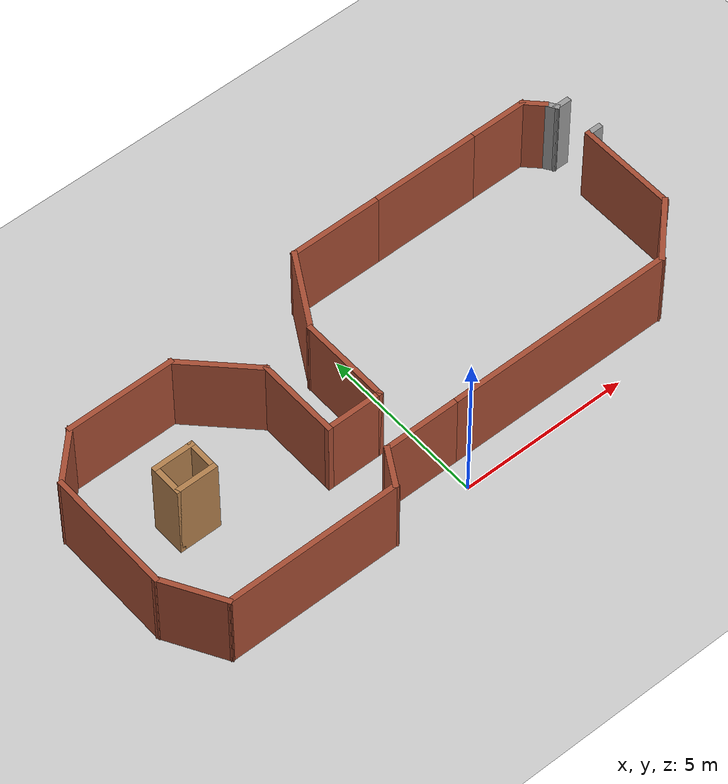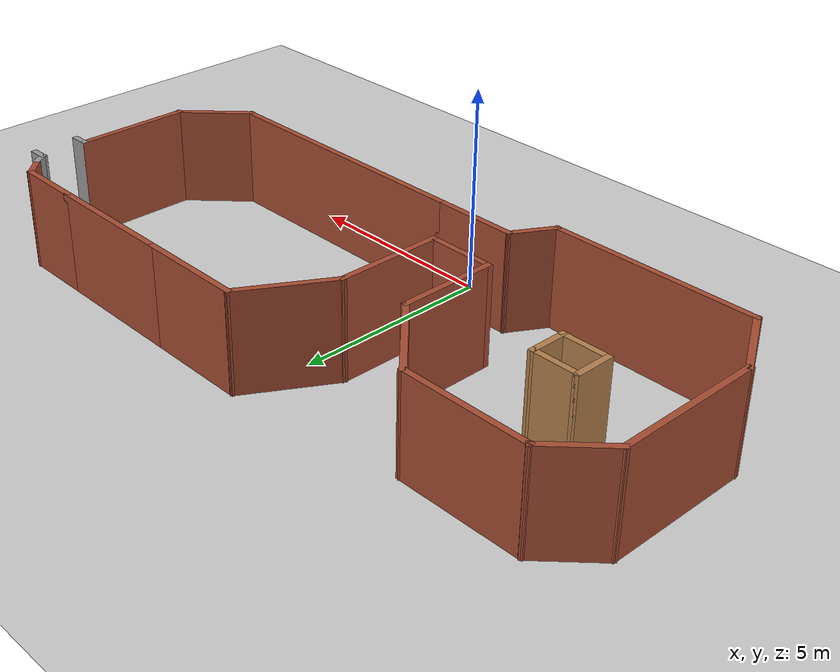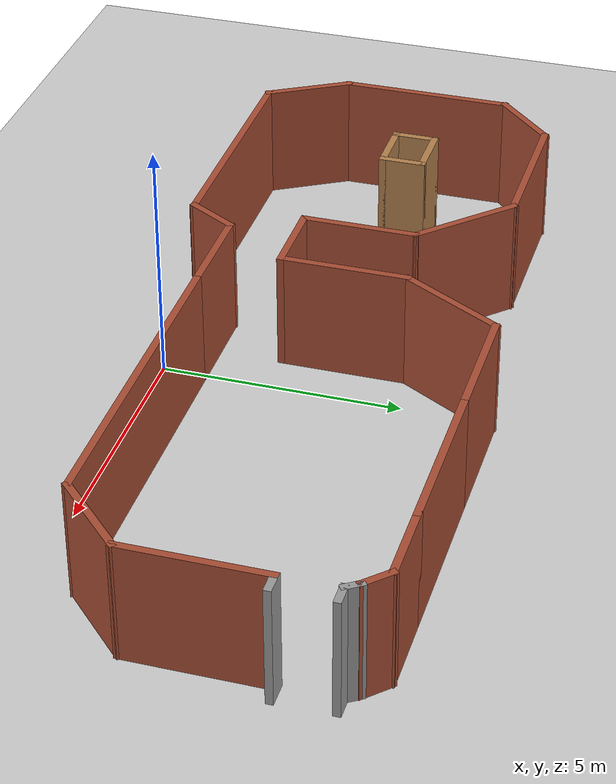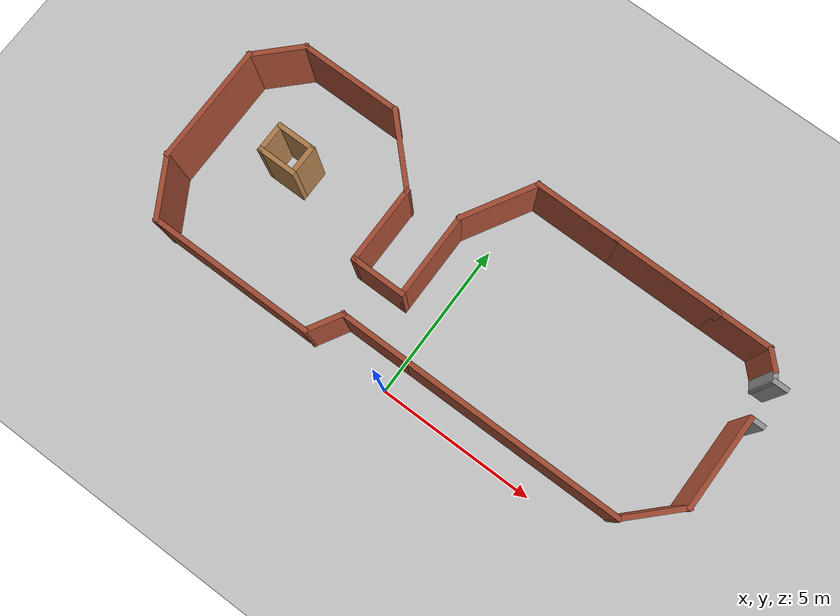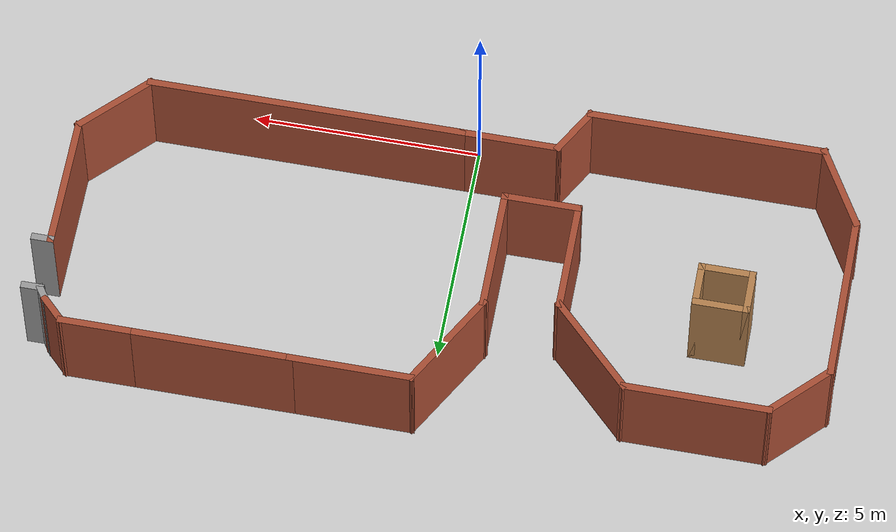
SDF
<sdf version="1.7">
 <world name="default">
  <light name="sun" type="directional">
   <pose>0 0 10 0 -0 0</pose>
   <diffuse>0.8 0.8 0.8 1</diffuse>
   <specular>0.2 0.2 0.2 1</specular>
   <attenuation>
    <range>1000</range>
    <constant>0.9</constant>
    <linear>0.01</linear>
    <quadratic>0.001</quadratic>
   </attenuation>
   <direction>-0.5 0.1 -0.9</direction>
   <spot><inner_angle>0</inner_angle><outer_angle>0</outer_angle><falloff>0</falloff></spot>
  </light>
  <model name="ground_plane">
   <static>1</static>
   <link name="link">
    <collision name="collision">
     <geometry><plane><normal>0 0 1</normal><size>100 100</size></plane></geometry>
     <surface><friction><ode><mu>100</mu><mu2>50</mu2></ode></friction></surface>
    </collision>
    <visual name="visual">
     <cast_shadows>0</cast_shadows>
     <geometry><plane><normal>0 0 1</normal><size>100 100</size></plane></geometry>
     <material>
      <script><uri>file://media/materials/scripts/gazebo.material</uri><name>Gazebo/Grey</name></script>
     </material>
    </visual>
   </link>
  </model>
  <gravity>0 0 -9.8</gravity>
  <magnetic_field>6e-06 2.3e-05 -4.2e-05</magnetic_field>
  <atmosphere type="adiabatic"/>
  <physics type="ode">
   <max_step_size>0.001</max_step_size>
   <real_time_factor>1</real_time_factor>
   <real_time_update_rate>1000</real_time_update_rate>
  </physics>
  <scene><ambient>0.4 0.4 0.4 1</ambient><background>0.7 0.7 0.7 1</background><shadows>1</shadows></scene>
  <audio><device>default</device></audio>
  <spherical_coordinates>
   <surface_model>EARTH_WGS84</surface_model>
   <latitude_deg>0</latitude_deg>
   <longitude_deg>0</longitude_deg>
   <elevation>0</elevation>
   <heading_deg>0</heading_deg>
  </spherical_coordinates>
  <model name="world-modul">
   <pose>0.13036 3.82608 0 0 -0 0</pose>
   <link name="Wall_0">
    <collision name="Wall_0_Collision">
     <geometry><box><size>2.75 0.15 2.5</size></box></geometry>
     <pose>0 0 1.25 0 -0 0</pose>
    </collision>
    <visual name="Wall_0_Visual">
     <pose>0 0 1.25 0 -0 0</pose>
     <geometry><box><size>2.75 0.15 2.5</size></box></geometry>
     <material>
      <script><uri>file://media/materials/scripts/gazebo.material</uri><name>Gazebo/Bricks</name></script>
      <ambient>1 1 1 1</ambient>
     </material>
     <meta><layer>0</layer></meta>
    </visual>
    <pose>1.39203 3.04502 0 0 -0 3.14159</pose>
   </link>
   <link name="Wall_1">
    <collision name="Wall_1_Collision">
     <geometry><box><size>2.5 0.15 2.5</size></box></geometry>
     <pose>0 0 1.25 0 -0 0</pose>
    </collision>
    <visual name="Wall_1_Visual">
     <pose>0 0 1.25 0 -0 0</pose>
     <geometry><box><size>2.5 0.15 2.5</size></box></geometry>
     <material>
      <script><uri>file://media/materials/scripts/gazebo.material</uri><name>Gazebo/Bricks</name></script>
      <ambient>1 1 1 1</ambient>
     </material>
     <meta><layer>0</layer></meta>
    </visual>
    <pose>-0.495469 2.02744 0 0 -0 -2.0944</pose>
   </link>
   <link name="Wall_10">
    <collision name="Wall_10_Collision">
     <geometry><box><size>5.25 0.15 2.5</size></box></geometry>
     <pose>0 0 1.25 0 -0 0</pose>
    </collision>
    <visual name="Wall_10_Visual">
     <pose>0 0 1.25 0 -0 0</pose>
     <geometry><box><size>5.25 0.15 2.5</size></box></geometry>
     <material>
      <script><uri>file://media/materials/scripts/gazebo.material</uri><name>Gazebo/Bricks</name></script>
      <ambient>1 1 1 1</ambient>
     </material>
     <meta><layer>0</layer></meta>
    </visual>
    <pose>-5.10104 -3.91196 0 0 -0 0</pose>
   </link>
   <link name="Wall_11">
    <collision name="Wall_11_Collision">
     <geometry><box><size>1.25 0.15 2.5</size></box></geometry>
     <pose>0 0 1.25 0 -0 0</pose>
    </collision>
    <visual name="Wall_11_Visual">
     <pose>0 0 1.25 0 -0 0</pose>
     <geometry><box><size>1.25 0.15 2.5</size></box></geometry>
     <material>
      <script><uri>file://media/materials/scripts/gazebo.material</uri><name>Gazebo/Bricks</name></script>
      <ambient>1 1 1 1</ambient>
     </material>
     <meta><layer>0</layer></meta>
    </visual>
    <pose>-2.27604 -3.43565 0 0 -0 1.0472</pose>
   </link>
   <link name="Wall_12">
    <collision name="Wall_12_Collision">
     <geometry><box><size>2.25 0.15 2.5</size></box></geometry>
     <pose>0 0 1.25 0 -0 0</pose>
    </collision>
    <visual name="Wall_12_Visual">
     <pose>0 0 1.25 0 -0 0</pose>
     <geometry><box><size>2.25 0.15 2.5</size></box></geometry>
     <material>
      <script><uri>file://media/materials/scripts/gazebo.material</uri><name>Gazebo/Bricks</name></script>
      <ambient>1 1 1 1</ambient>
     </material>
     <meta><layer>0</layer></meta>
    </visual>
    <pose>-0.95104 -2.95933 0 0 -0 0</pose>
   </link>
   <link name="Wall_13">
    <collision name="Wall_13_Collision">
     <geometry><box><size>7 0.15 2.5</size></box></geometry>
     <pose>0 0 1.25 0 -0 0</pose>
    </collision>
    <visual name="Wall_13_Visual">
     <pose>0 0 1.25 0 -0 0</pose>
     <geometry><box><size>7 0.15 2.5</size></box></geometry>
     <material>
      <script><uri>file://media/materials/scripts/gazebo.material</uri><name>Gazebo/Bricks</name></script>
      <ambient>1 1 1 1</ambient>
     </material>
     <meta><layer>0</layer></meta>
    </visual>
    <pose>3.52396 -2.95933 0 0 -0 0</pose>
   </link>
   <link name="Wall_14">
    <collision name="Wall_14_Collision">
     <geometry><box><size>2 0.15 2.5</size></box></geometry>
     <pose>0 0 1.25 0 -0 0</pose>
    </collision>
    <visual name="Wall_14_Visual">
     <pose>0 0 1.25 0 -0 0</pose>
     <geometry><box><size>2 0.15 2.5</size></box></geometry>
     <material>
      <script><uri>file://media/materials/scripts/gazebo.material</uri><name>Gazebo/Bricks</name></script>
      <ambient>1 1 1 1</ambient>
     </material>
     <meta><layer>0</layer></meta>
    </visual>
    <pose>7.60303 -2.30526 0 0 -0 0.785398</pose>
   </link>
   <link name="Wall_15">
    <collision name="Wall_15_Collision">
     <geometry><box><size>3 0.15 2.5</size></box></geometry>
     <pose>0 0 1.25 0 -0 0</pose>
    </collision>
    <visual name="Wall_15_Visual">
     <pose>0 0 1.25 0 -0 0</pose>
     <geometry><box><size>3 0.15 2.5</size></box></geometry>
     <material>
      <script><uri>file://media/materials/scripts/gazebo.material</uri><name>Gazebo/Bricks</name></script>
      <ambient>1 1 1 1</ambient>
     </material>
     <meta><layer>0</layer></meta>
    </visual>
    <pose>8.25711 -0.226184 0 0 -0 1.5708</pose>
   </link>
   <link name="Wall_18">
    <collision name="Wall_18_Collision">
     <geometry><box><size>3.5 0.15 2.5</size></box></geometry>
     <pose>0 0 1.25 0 -0 0</pose>
    </collision>
    <visual name="Wall_18_Visual">
     <pose>0 0 1.25 0 -0 0</pose>
     <geometry><box><size>3.5 0.15 2.5</size></box></geometry>
     <material>
      <script><uri>file://media/materials/scripts/gazebo.material</uri><name>Gazebo/Bricks</name></script>
      <ambient>1 1 1 1</ambient>
     </material>
     <meta><layer>0</layer></meta>
    </visual>
    <pose>4.36703 3.04502 0 0 -0 0</pose>
   </link>
   <link name="Wall_19">
    <collision name="Wall_19_Collision">
     <geometry><box><size>1.75 0.15 2.5</size></box></geometry>
     <pose>0 0 1.25 0 -0 0</pose>
    </collision>
    <visual name="Wall_19_Visual">
     <pose>0 0 1.25 0 -0 0</pose>
     <geometry><box><size>1.75 0.15 2.5</size></box></geometry>
     <material>
      <script><uri>file://media/materials/scripts/gazebo.material</uri><name>Gazebo/Bricks</name></script>
      <ambient>1 1 1 1</ambient>
     </material>
     <meta><layer>0</layer></meta>
    </visual>
    <pose>6.84203 3.04502 0 0 -0 0</pose>
   </link>
   <link name="Wall_2">
    <collision name="Wall_2_Collision">
     <geometry><box><size>2.75 0.15 2.5</size></box></geometry>
     <pose>0 0 1.25 0 -0 0</pose>
    </collision>
    <visual name="Wall_2_Visual">
     <pose>0 0 1.25 0 -0 0</pose>
     <geometry><box><size>2.75 0.15 2.5</size></box></geometry>
     <material>
      <script><uri>file://media/materials/scripts/gazebo.material</uri><name>Gazebo/Bricks</name></script>
      <ambient>1 1 1 1</ambient>
     </material>
     <meta><layer>0</layer></meta>
    </visual>
    <pose>-1.08297 -0.290142 0 0 -0 -1.5708</pose>
   </link>
   <link name="Wall_20">
    <collision name="Wall_20_Collision">
     <geometry><box><size>0.75 0.15 2.5</size></box></geometry>
     <pose>0 0 1.25 0 -0 0</pose>
    </collision>
    <visual name="Wall_20_Visual">
     <pose>0 0 1.25 0 -0 0</pose>
     <geometry><box><size>0.75 0.15 2.5</size></box></geometry>
     <material>
      <script><uri>file://media/materials/scripts/gazebo.material</uri><name>Gazebo/Bricks</name></script>
      <ambient>1 1 1 1</ambient>
     </material>
     <meta><layer>0</layer></meta>
    </visual>
    <pose>7.85416 2.83289 0 0 -0 -0.785398</pose>
   </link>
   <link name="Wall_21">
    <collision name="Wall_21_Collision">
     <geometry><box><size>0.447066 0.15 2.5</size></box></geometry>
     <pose>0 0 1.25 0 -0 0</pose>
    </collision>
    <visual name="Wall_21_Visual">
     <pose>0 0 1.25 0 -0 0</pose>
     <geometry><box><size>0.447066 0.15 2.5</size></box></geometry>
     <material>
      <script><uri>file://media/materials/scripts/gazebo.material</uri><name>Gazebo/Grey</name></script>
      <ambient>1 1 1 1</ambient>
     </material>
     <meta><layer>0</layer></meta>
    </visual>
    <pose>8.14845 2.49701 0 0 -0 -0.984698</pose>
   </link>
   <link name="Wall_22">
    <collision name="Wall_22_Collision">
     <geometry><box><size>0.5 0.15 2.5</size></box></geometry>
     <pose>0 0 1.25 0 -0 0</pose>
    </collision>
    <visual name="Wall_22_Visual">
     <pose>0 0 1.25 0 -0 0</pose>
     <geometry><box><size>0.5 0.15 2.5</size></box></geometry>
     <material>
      <script><uri>file://media/materials/scripts/gazebo.material</uri><name>Gazebo/Grey</name></script>
      <ambient>1 1 1 1</ambient>
     </material>
     <meta><layer>0</layer></meta>
    </visual>
    <pose>8.39805 2.37327 0 0 -0 0</pose>
   </link>
   <link name="Wall_24">
    <collision name="Wall_24_Collision">
     <geometry><box><size>0.5 0.15 2.5</size></box></geometry>
     <pose>0 0 1.25 0 -0 0</pose>
    </collision>
    <visual name="Wall_24_Visual">
     <pose>0 0 1.25 0 -0 0</pose>
     <geometry><box><size>0.5 0.15 2.5</size></box></geometry>
     <material>
      <script><uri>file://media/materials/scripts/gazebo.material</uri><name>Gazebo/Grey</name></script>
      <ambient>1 1 1 1</ambient>
     </material>
     <meta><layer>0</layer></meta>
    </visual>
    <pose>8.43211 1.19882 0 0 -0 0</pose>
   </link>
   <link name="Wall_3">
    <collision name="Wall_3_Collision">
     <geometry><box><size>1.75 0.15 2.5</size></box></geometry>
     <pose>0 0 1.25 0 -0 0</pose>
    </collision>
    <visual name="Wall_3_Visual">
     <pose>0 0 1.25 0 -0 0</pose>
     <geometry><box><size>1.75 0.15 2.5</size></box></geometry>
     <material>
      <script><uri>file://media/materials/scripts/gazebo.material</uri><name>Gazebo/Bricks</name></script>
      <ambient>1 1 1 1</ambient>
     </material>
     <meta><layer>0</layer></meta>
    </visual>
    <pose>-1.88297 -1.59014 0 0 -0 3.14159</pose>
   </link>
   <link name="Wall_4">
    <collision name="Wall_4_Collision">
     <geometry><box><size>2.5 0.15 2.5</size></box></geometry>
     <pose>0 0 1.25 0 -0 0</pose>
    </collision>
    <visual name="Wall_4_Visual">
     <pose>0 0 1.25 0 -0 0</pose>
     <geometry><box><size>2.5 0.15 2.5</size></box></geometry>
     <material>
      <script><uri>file://media/materials/scripts/gazebo.material</uri><name>Gazebo/Bricks</name></script>
      <ambient>1 1 1 1</ambient>
     </material>
     <meta><layer>0</layer></meta>
    </visual>
    <pose>-2.68297 -0.415142 0 0 -0 1.5708</pose>
   </link>
   <link name="Wall_48">
    <collision name="Wall_48_Collision">
     <geometry><box><size>1.25 0.15 2.5</size></box></geometry>
     <pose>0 0 1.25 0 -0 0</pose>
    </collision>
    <visual name="Wall_48_Visual">
     <pose>0 0 1.25 0 -0 0</pose>
     <geometry><box><size>1.25 0.15 2.5</size></box></geometry>
     <material>
      <script><uri>file://media/materials/scripts/gazebo.material</uri><name>Gazebo/Wood</name></script>
      <ambient>1 1 1 1</ambient>
     </material>
     <meta><layer>0</layer></meta>
    </visual>
    <pose>-6.05415 0.17022 0 0 -0 0</pose>
   </link>
   <link name="Wall_49">
    <collision name="Wall_49_Collision">
     <geometry><box><size>1 0.15 2.5</size></box></geometry>
     <pose>0 0 1.25 0 -0 0</pose>
    </collision>
    <visual name="Wall_49_Visual">
     <pose>0 0 1.25 0 -0 0</pose>
     <geometry><box><size>1 0.15 2.5</size></box></geometry>
     <material>
      <script><uri>file://media/materials/scripts/gazebo.material</uri><name>Gazebo/Wood</name></script>
      <ambient>1 1 1 1</ambient>
     </material>
     <meta><layer>0</layer></meta>
    </visual>
    <pose>-5.50415 -0.25478 0 0 -0 -1.5708</pose>
   </link>
   <link name="Wall_5">
    <collision name="Wall_5_Collision">
     <geometry><box><size>2.5 0.15 2.5</size></box></geometry>
     <pose>0 0 1.25 0 -0 0</pose>
    </collision>
    <visual name="Wall_5_Visual">
     <pose>0 0 1.25 0 -0 0</pose>
     <geometry><box><size>2.5 0.15 2.5</size></box></geometry>
     <material>
      <script><uri>file://media/materials/scripts/gazebo.material</uri><name>Gazebo/Bricks</name></script>
      <ambient>1 1 1 1</ambient>
     </material>
     <meta><layer>0</layer></meta>
    </visual>
    <pose>-3.51382 1.59071 0 0 -0 2.35619</pose>
   </link>
   <link name="Wall_50">
    <collision name="Wall_50_Collision">
     <geometry><box><size>1.25 0.15 2.5</size></box></geometry>
     <pose>0 0 1.25 0 -0 0</pose>
    </collision>
    <visual name="Wall_50_Visual">
     <pose>0 0 1.25 0 -0 0</pose>
     <geometry><box><size>1.25 0.15 2.5</size></box></geometry>
     <material>
      <script><uri>file://media/materials/scripts/gazebo.material</uri><name>Gazebo/Wood</name></script>
      <ambient>1 1 1 1</ambient>
     </material>
     <meta><layer>0</layer></meta>
    </visual>
    <pose>-6.05415 -0.67978 0 0 -0 3.14159</pose>
   </link>
   <link name="Wall_51">
    <collision name="Wall_51_Collision">
     <geometry><box><size>1 0.15 2.5</size></box></geometry>
     <pose>0 0 1.25 0 -0 0</pose>
    </collision>
    <visual name="Wall_51_Visual">
     <pose>0 0 1.25 0 -0 0</pose>
     <geometry><box><size>1 0.15 2.5</size></box></geometry>
     <material>
      <script><uri>file://media/materials/scripts/gazebo.material</uri><name>Gazebo/Wood</name></script>
      <ambient>1 1 1 1</ambient>
     </material>
     <meta><layer>0</layer></meta>
    </visual>
    <pose>-6.60416 -0.25478 0 0 -0 1.5708</pose>
   </link>
   <link name="Wall_6">
    <collision name="Wall_6_Collision">
     <geometry><box><size>3.25 0.15 2.5</size></box></geometry>
     <pose>0 0 1.25 0 -0 0</pose>
    </collision>
    <visual name="Wall_6_Visual">
     <pose>0 0 1.25 0 -0 0</pose>
     <geometry><box><size>3.25 0.15 2.5</size></box></geometry>
     <material>
      <script><uri>file://media/materials/scripts/gazebo.material</uri><name>Gazebo/Bricks</name></script>
      <ambient>1 1 1 1</ambient>
     </material>
     <meta><layer>0</layer></meta>
    </visual>
    <pose>-5.89467 2.42156 0 0 -0 3.14159</pose>
   </link>
   <link name="Wall_7">
    <collision name="Wall_7_Collision">
     <geometry><box><size>1.75 0.15 2.5</size></box></geometry>
     <pose>0 0 1.25 0 -0 0</pose>
    </collision>
    <visual name="Wall_7_Visual">
     <pose>0 0 1.25 0 -0 0</pose>
     <geometry><box><size>1.75 0.15 2.5</size></box></geometry>
     <material>
      <script><uri>file://media/materials/scripts/gazebo.material</uri><name>Gazebo/Bricks</name></script>
      <ambient>1 1 1 1</ambient>
     </material>
     <meta><layer>0</layer></meta>
    </visual>
    <pose>-8.01036 1.85587 0 0 -0 -2.35619</pose>
   </link>
   <link name="Wall_8">
    <collision name="Wall_8_Collision">
     <geometry><box><size>3.75 0.15 2.5</size></box></geometry>
     <pose>0 0 1.25 0 -0 0</pose>
    </collision>
    <visual name="Wall_8_Visual">
     <pose>0 0 1.25 0 -0 0</pose>
     <geometry><box><size>3.75 0.15 2.5</size></box></geometry>
     <material>
      <script><uri>file://media/materials/scripts/gazebo.material</uri><name>Gazebo/Bricks</name></script>
      <ambient>1 1 1 1</ambient>
     </material>
     <meta><layer>0</layer></meta>
    </visual>
    <pose>-8.57604 -0.509812 0 0 -0 -1.5708</pose>
   </link>
   <link name="Wall_9">
    <collision name="Wall_9_Collision">
     <geometry><box><size>2 0.15 2.5</size></box></geometry>
     <pose>0 0 1.25 0 -0 0</pose>
    </collision>
    <visual name="Wall_9_Visual">
     <pose>0 0 1.25 0 -0 0</pose>
     <geometry><box><size>2 0.15 2.5</size></box></geometry>
     <material>
      <script><uri>file://media/materials/scripts/gazebo.material</uri><name>Gazebo/Bricks</name></script>
      <ambient>1 1 1 1</ambient>
     </material>
     <meta><layer>0</layer></meta>
    </visual>
    <pose>-8.11354 -3.11089 0 0 -0 -1.0472</pose>
   </link>
   <static>1</static>
  </model>
 </world>
</sdf>
